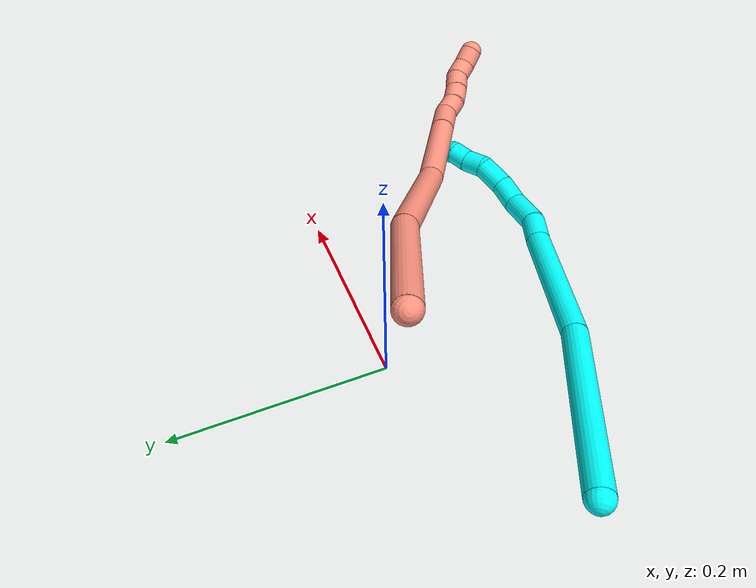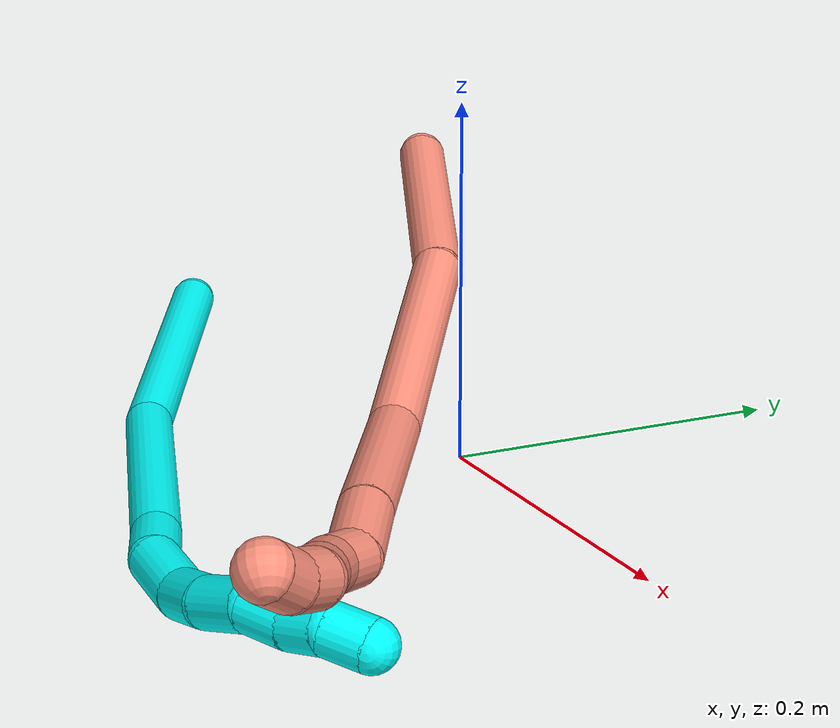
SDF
<sdf version="1.7">
 <world name="default">
  <model name="3">
   <static>0</static>
   <link name="3">
    <collision name="collision-cylinder-e_1_1_4">
     <pose>0.009654 0.024155 -0.082222 -2.85586 0.11218 -0.744285</pose>
     <geometry><cylinder><radius>0.0125</radius><length>0.172478</length></cylinder></geometry>
     <surface>
      <friction><ode><mu>1.16</mu><mu2>1.16</mu2><slip1>0</slip1><slip2>0</slip2></ode></friction>
      <contact><ode><kp>1e+06</kp><kd>1</kd><max_vel>0</max_vel><min_depth>0.001</min_depth></ode></contact>
     </surface>
    </collision>
    <visual name="visual-cylinder-e_1_1_4">
     <pose>0.009654 0.024155 -0.082222 -2.85586 0.11218 -0.744285</pose>
     <geometry><cylinder><radius>0.0125</radius><length>0.172478</length></cylinder></geometry>
     <material><ambient>0.003922 1 0.996078 1</ambient></material>
    </visual>
    <collision name="collision-cylinder-e_2_4_5">
     <pose>0.039225 0.063765 -0.22733 -2.9006 0.298384 -1.78533</pose>
     <geometry><cylinder><radius>0.0125</radius><length>0.135502</length></cylinder></geometry>
     <surface>
      <friction><ode><mu>1.16</mu><mu2>1.16</mu2><slip1>0</slip1><slip2>0</slip2></ode></friction>
      <contact><ode><kp>1e+06</kp><kd>1</kd><max_vel>0</max_vel><min_depth>0.001</min_depth></ode></contact>
     </surface>
    </collision>
    <visual name="visual-cylinder-e_2_4_5">
     <pose>0.039225 0.063765 -0.22733 -2.9006 0.298384 -1.78533</pose>
     <geometry><cylinder><radius>0.0125</radius><length>0.135502</length></cylinder></geometry>
     <material><ambient>0.003922 1 0.996078 1</ambient></material>
    </visual>
    <collision name="collision-cylinder-e_3_5_6">
     <pose>0.062955 0.081426 -0.305003 -2.99358 0.249729 -2.07452</pose>
     <geometry><cylinder><radius>0.0125</radius><length>0.030859</length></cylinder></geometry>
     <surface>
      <friction><ode><mu>1.16</mu><mu2>1.16</mu2><slip1>0</slip1><slip2>0</slip2></ode></friction>
      <contact><ode><kp>1e+06</kp><kd>1</kd><max_vel>0</max_vel><min_depth>0.001</min_depth></ode></contact>
     </surface>
    </collision>
    <visual name="visual-cylinder-e_3_5_6">
     <pose>0.062955 0.081426 -0.305003 -2.99358 0.249729 -2.07452</pose>
     <geometry><cylinder><radius>0.0125</radius><length>0.030859</length></cylinder></geometry>
     <material><ambient>0.003922 1 0.996078 1</ambient></material>
    </visual>
    <collision name="collision-cylinder-e_4_6_7">
     <pose>0.077587 0.087432 -0.334624 -2.89075 0.615058 -2.38578</pose>
     <geometry><cylinder><radius>0.0125</radius><length>0.037498</length></cylinder></geometry>
     <surface>
      <friction><ode><mu>1.16</mu><mu2>1.16</mu2><slip1>0</slip1><slip2>0</slip2></ode></friction>
      <contact><ode><kp>1e+06</kp><kd>1</kd><max_vel>0</max_vel><min_depth>0.001</min_depth></ode></contact>
     </surface>
    </collision>
    <visual name="visual-cylinder-e_4_6_7">
     <pose>0.077587 0.087432 -0.334624 -2.89075 0.615058 -2.38578</pose>
     <geometry><cylinder><radius>0.0125</radius><length>0.037498</length></cylinder></geometry>
     <material><ambient>0.003922 1 0.996078 1</ambient></material>
    </visual>
    <collision name="collision-cylinder-e_5_7_8">
     <pose>0.097145 0.089695 -0.360627 3.00475 0.659418 2.7463</pose>
     <geometry><cylinder><radius>0.0125</radius><length>0.02853</length></cylinder></geometry>
     <surface>
      <friction><ode><mu>1.16</mu><mu2>1.16</mu2><slip1>0</slip1><slip2>0</slip2></ode></friction>
      <contact><ode><kp>1e+06</kp><kd>1</kd><max_vel>0</max_vel><min_depth>0.001</min_depth></ode></contact>
     </surface>
    </collision>
    <visual name="visual-cylinder-e_5_7_8">
     <pose>0.097145 0.089695 -0.360627 3.00475 0.659418 2.7463</pose>
     <geometry><cylinder><radius>0.0125</radius><length>0.02853</length></cylinder></geometry>
     <material><ambient>0.003922 1 0.996078 1</ambient></material>
    </visual>
    <collision name="collision-cylinder-e_6_8_9">
     <pose>0.117776 0.085538 -0.381466 2.87713 0.870704 2.58452</pose>
     <geometry><cylinder><radius>0.0125</radius><length>0.0311</length></cylinder></geometry>
     <surface>
      <friction><ode><mu>1.16</mu><mu2>1.16</mu2><slip1>0</slip1><slip2>0</slip2></ode></friction>
      <contact><ode><kp>1e+06</kp><kd>1</kd><max_vel>0</max_vel><min_depth>0.001</min_depth></ode></contact>
     </surface>
    </collision>
    <visual name="visual-cylinder-e_6_8_9">
     <pose>0.117776 0.085538 -0.381466 2.87713 0.870704 2.58452</pose>
     <geometry><cylinder><radius>0.0125</radius><length>0.0311</length></cylinder></geometry>
     <material><ambient>0.003922 1 0.996078 1</ambient></material>
    </visual>
    <collision name="collision-cylinder-e_7_9_10">
     <pose>0.139879 0.08471 -0.396084 -2.79434 1.09496 -2.58134</pose>
     <geometry><cylinder><radius>0.0125</radius><length>0.022973</length></cylinder></geometry>
     <surface>
      <friction><ode><mu>1.16</mu><mu2>1.16</mu2><slip1>0</slip1><slip2>0</slip2></ode></friction>
      <contact><ode><kp>1e+06</kp><kd>1</kd><max_vel>0</max_vel><min_depth>0.001</min_depth></ode></contact>
     </surface>
    </collision>
    <visual name="visual-cylinder-e_7_9_10">
     <pose>0.139879 0.08471 -0.396084 -2.79434 1.09496 -2.58134</pose>
     <geometry><cylinder><radius>0.0125</radius><length>0.022973</length></cylinder></geometry>
     <material><ambient>0.003922 1 0.996078 1</ambient></material>
    </visual>
    <collision name="collision-cylinder-e_8_10_11">
     <pose>0.158765 0.085707 -0.406045 2.98466 1.04142 2.86909</pose>
     <geometry><cylinder><radius>0.0125</radius><length>0.020102</length></cylinder></geometry>
     <surface>
      <friction><ode><mu>1.16</mu><mu2>1.16</mu2><slip1>0</slip1><slip2>0</slip2></ode></friction>
      <contact><ode><kp>1e+06</kp><kd>1</kd><max_vel>0</max_vel><min_depth>0.001</min_depth></ode></contact>
     </surface>
    </collision>
    <visual name="visual-cylinder-e_8_10_11">
     <pose>0.158765 0.085707 -0.406045 2.98466 1.04142 2.86909</pose>
     <geometry><cylinder><radius>0.0125</radius><length>0.020102</length></cylinder></geometry>
     <material><ambient>0.003922 1 0.996078 1</ambient></material>
    </visual>
    <collision name="collision-cylinder-e_9_11_2">
     <pose>0.177366 0.087329 -0.413395 -2.33972 1.24437 -2.074</pose>
     <geometry><cylinder><radius>0.0125</radius><length>0.020959</length></cylinder></geometry>
     <surface>
      <friction><ode><mu>1.16</mu><mu2>1.16</mu2><slip1>0</slip1><slip2>0</slip2></ode></friction>
      <contact><ode><kp>1e+06</kp><kd>1</kd><max_vel>0</max_vel><min_depth>0.001</min_depth></ode></contact>
     </surface>
    </collision>
    <visual name="visual-cylinder-e_9_11_2">
     <pose>0.177366 0.087329 -0.413395 -2.33972 1.24437 -2.074</pose>
     <geometry><cylinder><radius>0.0125</radius><length>0.020959</length></cylinder></geometry>
     <material><ambient>0.003922 1 0.996078 1</ambient></material>
    </visual>
    <collision name="collision-sphere-2">
     <pose>0.187293 0.089744 -0.415731 0 -0 0</pose>
     <geometry><sphere><radius>0.0125</radius></sphere></geometry>
     <surface>
      <friction><ode><mu>1.16</mu><mu2>1.16</mu2><slip1>0</slip1><slip2>0</slip2></ode></friction>
      <contact><ode><kp>1e+06</kp><kd>1</kd><max_vel>0</max_vel><min_depth>0.001</min_depth></ode></contact>
     </surface>
    </collision>
    <visual name="visual-sphere-2">
     <pose>0.187293 0.089744 -0.415731 0 -0 0</pose>
     <geometry><sphere><radius>0.0125</radius></sphere></geometry>
     <material><ambient>0.003922 1 0.996078 1</ambient></material>
    </visual>
    <collision name="collision-sphere-11">
     <pose>0.16744 0.084914 -0.411058 0 -0 0</pose>
     <geometry><sphere><radius>0.0125</radius></sphere></geometry>
     <surface>
      <friction><ode><mu>1.16</mu><mu2>1.16</mu2><slip1>0</slip1><slip2>0</slip2></ode></friction>
      <contact><ode><kp>1e+06</kp><kd>1</kd><max_vel>0</max_vel><min_depth>0.001</min_depth></ode></contact>
     </surface>
    </collision>
    <visual name="visual-sphere-11">
     <pose>0.16744 0.084914 -0.411058 0 -0 0</pose>
     <geometry><sphere><radius>0.0125</radius></sphere></geometry>
     <material><ambient>0.003922 1 0.996078 1</ambient></material>
    </visual>
    <collision name="collision-sphere-10">
     <pose>0.15009 0.0865 -0.401032 0 -0 0</pose>
     <geometry><sphere><radius>0.0125</radius></sphere></geometry>
     <surface>
      <friction><ode><mu>1.16</mu><mu2>1.16</mu2><slip1>0</slip1><slip2>0</slip2></ode></friction>
      <contact><ode><kp>1e+06</kp><kd>1</kd><max_vel>0</max_vel><min_depth>0.001</min_depth></ode></contact>
     </surface>
    </collision>
    <visual name="visual-sphere-10">
     <pose>0.15009 0.0865 -0.401032 0 -0 0</pose>
     <geometry><sphere><radius>0.0125</radius></sphere></geometry>
     <material><ambient>0.003922 1 0.996078 1</ambient></material>
    </visual>
    <collision name="collision-sphere-9">
     <pose>0.129669 0.082919 -0.391136 0 -0 0</pose>
     <geometry><sphere><radius>0.0125</radius></sphere></geometry>
     <surface>
      <friction><ode><mu>1.16</mu><mu2>1.16</mu2><slip1>0</slip1><slip2>0</slip2></ode></friction>
      <contact><ode><kp>1e+06</kp><kd>1</kd><max_vel>0</max_vel><min_depth>0.001</min_depth></ode></contact>
     </surface>
    </collision>
    <visual name="visual-sphere-9">
     <pose>0.129669 0.082919 -0.391136 0 -0 0</pose>
     <geometry><sphere><radius>0.0125</radius></sphere></geometry>
     <material><ambient>0.003922 1 0.996078 1</ambient></material>
    </visual>
    <collision name="collision-sphere-4">
     <pose>0.019308 0.04831 -0.164444 0 -0 0</pose>
     <geometry><sphere><radius>0.0125</radius></sphere></geometry>
     <surface>
      <friction><ode><mu>1.16</mu><mu2>1.16</mu2><slip1>0</slip1><slip2>0</slip2></ode></friction>
      <contact><ode><kp>1e+06</kp><kd>1</kd><max_vel>0</max_vel><min_depth>0.001</min_depth></ode></contact>
     </surface>
    </collision>
    <visual name="visual-sphere-4">
     <pose>0.019308 0.04831 -0.164444 0 -0 0</pose>
     <geometry><sphere><radius>0.0125</radius></sphere></geometry>
     <material><ambient>0.003922 1 0.996078 1</ambient></material>
    </visual>
    <collision name="collision-sphere-1">
     <geometry><sphere><radius>0.0125</radius></sphere></geometry>
     <surface>
      <friction><ode><mu>1.16</mu><mu2>1.16</mu2><slip1>0</slip1><slip2>0</slip2></ode></friction>
      <contact><ode><kp>1e+06</kp><kd>1</kd><max_vel>0</max_vel><min_depth>0.001</min_depth></ode></contact>
     </surface>
    </collision>
    <visual name="visual-sphere-1">
     <geometry><sphere><radius>0.0125</radius></sphere></geometry>
     <material><ambient>0.003922 1 0.996078 1</ambient></material>
    </visual>
    <collision name="collision-sphere-8">
     <pose>0.105884 0.088157 -0.371796 0 -0 0</pose>
     <geometry><sphere><radius>0.0125</radius></sphere></geometry>
     <surface>
      <friction><ode><mu>1.16</mu><mu2>1.16</mu2><slip1>0</slip1><slip2>0</slip2></ode></friction>
      <contact><ode><kp>1e+06</kp><kd>1</kd><max_vel>0</max_vel><min_depth>0.001</min_depth></ode></contact>
     </surface>
    </collision>
    <visual name="visual-sphere-8">
     <pose>0.105884 0.088157 -0.371796 0 -0 0</pose>
     <geometry><sphere><radius>0.0125</radius></sphere></geometry>
     <material><ambient>0.003922 1 0.996078 1</ambient></material>
    </visual>
    <collision name="collision-sphere-5">
     <pose>0.059142 0.079221 -0.290216 0 -0 0</pose>
     <geometry><sphere><radius>0.0125</radius></sphere></geometry>
     <surface>
      <friction><ode><mu>1.16</mu><mu2>1.16</mu2><slip1>0</slip1><slip2>0</slip2></ode></friction>
      <contact><ode><kp>1e+06</kp><kd>1</kd><max_vel>0</max_vel><min_depth>0.001</min_depth></ode></contact>
     </surface>
    </collision>
    <visual name="visual-sphere-5">
     <pose>0.059142 0.079221 -0.290216 0 -0 0</pose>
     <geometry><sphere><radius>0.0125</radius></sphere></geometry>
     <material><ambient>0.003922 1 0.996078 1</ambient></material>
    </visual>
    <collision name="collision-sphere-6">
     <pose>0.066769 0.083631 -0.31979 0 -0 0</pose>
     <geometry><sphere><radius>0.0125</radius></sphere></geometry>
     <surface>
      <friction><ode><mu>1.16</mu><mu2>1.16</mu2><slip1>0</slip1><slip2>0</slip2></ode></friction>
      <contact><ode><kp>1e+06</kp><kd>1</kd><max_vel>0</max_vel><min_depth>0.001</min_depth></ode></contact>
     </surface>
    </collision>
    <visual name="visual-sphere-6">
     <pose>0.066769 0.083631 -0.31979 0 -0 0</pose>
     <geometry><sphere><radius>0.0125</radius></sphere></geometry>
     <material><ambient>0.003922 1 0.996078 1</ambient></material>
    </visual>
    <collision name="collision-sphere-7">
     <pose>0.088405 0.091233 -0.349458 0 -0 0</pose>
     <geometry><sphere><radius>0.0125</radius></sphere></geometry>
     <surface>
      <friction><ode><mu>1.16</mu><mu2>1.16</mu2><slip1>0</slip1><slip2>0</slip2></ode></friction>
      <contact><ode><kp>1e+06</kp><kd>1</kd><max_vel>0</max_vel><min_depth>0.001</min_depth></ode></contact>
     </surface>
    </collision>
    <visual name="visual-sphere-7">
     <pose>0.088405 0.091233 -0.349458 0 -0 0</pose>
     <geometry><sphere><radius>0.0125</radius></sphere></geometry>
     <material><ambient>0.003922 1 0.996078 1</ambient></material>
    </visual>
    <inertial>
     <pose>0.056778 0.058632 -0.230046 0 -0 0</pose>
     <mass>0.5</mass>
     <inertia>
      <ixx>-0.000218</ixx>
      <ixy>0</ixy>
      <ixz>0</ixz>
      <iyy>-0.00071</iyy>
      <iyz>0</iyz>
      <izz>-0.000329</izz>
     </inertia>
    </inertial>
   </link>
   <pose>-0.200418 -0.084377 0.054374 -1.71058 0.004049 0.970213</pose>
  </model>
  <model name="16">
   <static>0</static>
   <link name="16">
    <collision name="collision-cylinder-e_1_1_4">
     <pose>0.022698 -0.015674 -0.058303 2.87897 0.359619 1.88491</pose>
     <geometry><cylinder><radius>0.0125</radius><length>0.128997</length></cylinder></geometry>
     <surface>
      <friction><ode><mu>1.16</mu><mu2>1.16</mu2><slip1>0</slip1><slip2>0</slip2></ode></friction>
      <contact><ode><kp>1e+06</kp><kd>1</kd><max_vel>0</max_vel><min_depth>0.001</min_depth></ode></contact>
     </surface>
    </collision>
    <visual name="visual-cylinder-e_1_1_4">
     <pose>0.022698 -0.015674 -0.058303 2.87897 0.359619 1.88491</pose>
     <geometry><cylinder><radius>0.0125</radius><length>0.128997</length></cylinder></geometry>
     <material><ambient>1 0.576471 0.494118 1</ambient></material>
    </visual>
    <collision name="collision-cylinder-e_2_4_5">
     <pose>0.058436 -0.058886 -0.176656 2.71162 0.194867 0.841743</pose>
     <geometry><cylinder><radius>0.0125</radius><length>0.134676</length></cylinder></geometry>
     <surface>
      <friction><ode><mu>1.16</mu><mu2>1.16</mu2><slip1>0</slip1><slip2>0</slip2></ode></friction>
      <contact><ode><kp>1e+06</kp><kd>1</kd><max_vel>0</max_vel><min_depth>0.001</min_depth></ode></contact>
     </surface>
    </collision>
    <visual name="visual-cylinder-e_2_4_5">
     <pose>0.058436 -0.058886 -0.176656 2.71162 0.194867 0.841743</pose>
     <geometry><cylinder><radius>0.0125</radius><length>0.134676</length></cylinder></geometry>
     <material><ambient>1 0.576471 0.494118 1</ambient></material>
    </visual>
    <collision name="collision-cylinder-e_3_5_6">
     <pose>0.092923 -0.108546 -0.273034 2.59462 0.467051 1.40661</pose>
     <geometry><cylinder><radius>0.0125</radius><length>0.095271</length></cylinder></geometry>
     <surface>
      <friction><ode><mu>1.16</mu><mu2>1.16</mu2><slip1>0</slip1><slip2>0</slip2></ode></friction>
      <contact><ode><kp>1e+06</kp><kd>1</kd><max_vel>0</max_vel><min_depth>0.001</min_depth></ode></contact>
     </surface>
    </collision>
    <visual name="visual-cylinder-e_3_5_6">
     <pose>0.092923 -0.108546 -0.273034 2.59462 0.467051 1.40661</pose>
     <geometry><cylinder><radius>0.0125</radius><length>0.095271</length></cylinder></geometry>
     <material><ambient>1 0.576471 0.494118 1</ambient></material>
    </visual>
    <collision name="collision-cylinder-e_4_6_7">
     <pose>0.122211 -0.139045 -0.325232 2.65597 0.41191 1.40133</pose>
     <geometry><cylinder><radius>0.0125</radius><length>0.039166</length></cylinder></geometry>
     <surface>
      <friction><ode><mu>1.16</mu><mu2>1.16</mu2><slip1>0</slip1><slip2>0</slip2></ode></friction>
      <contact><ode><kp>1e+06</kp><kd>1</kd><max_vel>0</max_vel><min_depth>0.001</min_depth></ode></contact>
     </surface>
    </collision>
    <visual name="visual-cylinder-e_4_6_7">
     <pose>0.122211 -0.139045 -0.325232 2.65597 0.41191 1.40133</pose>
     <geometry><cylinder><radius>0.0125</radius><length>0.039166</length></cylinder></geometry>
     <material><ambient>1 0.576471 0.494118 1</ambient></material>
    </visual>
    <collision name="collision-cylinder-e_5_7_8">
     <pose>0.134772 -0.155734 -0.346311 2.13045 0.448542 0.781747</pose>
     <geometry><cylinder><radius>0.0125</radius><length>0.021773</length></cylinder></geometry>
     <surface>
      <friction><ode><mu>1.16</mu><mu2>1.16</mu2><slip1>0</slip1><slip2>0</slip2></ode></friction>
      <contact><ode><kp>1e+06</kp><kd>1</kd><max_vel>0</max_vel><min_depth>0.001</min_depth></ode></contact>
     </surface>
    </collision>
    <visual name="visual-cylinder-e_5_7_8">
     <pose>0.134772 -0.155734 -0.346311 2.13045 0.448542 0.781747</pose>
     <geometry><cylinder><radius>0.0125</radius><length>0.021773</length></cylinder></geometry>
     <material><ambient>1 0.576471 0.494118 1</ambient></material>
    </visual>
    <collision name="collision-cylinder-e_6_8_9">
     <pose>0.145882 -0.169598 -0.35695 2.34538 0.688353 1.41166</pose>
     <geometry><cylinder><radius>0.0125</radius><length>0.020112</length></cylinder></geometry>
     <surface>
      <friction><ode><mu>1.16</mu><mu2>1.16</mu2><slip1>0</slip1><slip2>0</slip2></ode></friction>
      <contact><ode><kp>1e+06</kp><kd>1</kd><max_vel>0</max_vel><min_depth>0.001</min_depth></ode></contact>
     </surface>
    </collision>
    <visual name="visual-cylinder-e_6_8_9">
     <pose>0.145882 -0.169598 -0.35695 2.34538 0.688353 1.41166</pose>
     <geometry><cylinder><radius>0.0125</radius><length>0.020112</length></cylinder></geometry>
     <material><ambient>1 0.576471 0.494118 1</ambient></material>
    </visual>
    <collision name="collision-cylinder-e_7_9_10">
     <pose>0.159461 -0.179689 -0.367647 2.4299 0.802307 1.7025</pose>
     <geometry><cylinder><radius>0.0125</radius><length>0.020004</length></cylinder></geometry>
     <surface>
      <friction><ode><mu>1.16</mu><mu2>1.16</mu2><slip1>0</slip1><slip2>0</slip2></ode></friction>
      <contact><ode><kp>1e+06</kp><kd>1</kd><max_vel>0</max_vel><min_depth>0.001</min_depth></ode></contact>
     </surface>
    </collision>
    <visual name="visual-cylinder-e_7_9_10">
     <pose>0.159461 -0.179689 -0.367647 2.4299 0.802307 1.7025</pose>
     <geometry><cylinder><radius>0.0125</radius><length>0.020004</length></cylinder></geometry>
     <material><ambient>1 0.576471 0.494118 1</ambient></material>
    </visual>
    <collision name="collision-cylinder-e_8_10_11">
     <pose>0.171639 -0.191962 -0.376827 2.03951 0.522104 0.820134</pose>
     <geometry><cylinder><radius>0.0125</radius><length>0.02</length></cylinder></geometry>
     <surface>
      <friction><ode><mu>1.16</mu><mu2>1.16</mu2><slip1>0</slip1><slip2>0</slip2></ode></friction>
      <contact><ode><kp>1e+06</kp><kd>1</kd><max_vel>0</max_vel><min_depth>0.001</min_depth></ode></contact>
     </surface>
    </collision>
    <visual name="visual-cylinder-e_8_10_11">
     <pose>0.171639 -0.191962 -0.376827 2.03951 0.522104 0.820134</pose>
     <geometry><cylinder><radius>0.0125</radius><length>0.02</length></cylinder></geometry>
     <material><ambient>1 0.576471 0.494118 1</ambient></material>
    </visual>
    <collision name="collision-cylinder-e_9_11_2">
     <pose>0.182728 -0.207448 -0.382369 1.77768 0.656319 0.794144</pose>
     <geometry><cylinder><radius>0.0125</radius><length>0.02</length></cylinder></geometry>
     <surface>
      <friction><ode><mu>1.16</mu><mu2>1.16</mu2><slip1>0</slip1><slip2>0</slip2></ode></friction>
      <contact><ode><kp>1e+06</kp><kd>1</kd><max_vel>0</max_vel><min_depth>0.001</min_depth></ode></contact>
     </surface>
    </collision>
    <visual name="visual-cylinder-e_9_11_2">
     <pose>0.182728 -0.207448 -0.382369 1.77768 0.656319 0.794144</pose>
     <geometry><cylinder><radius>0.0125</radius><length>0.02</length></cylinder></geometry>
     <material><ambient>1 0.576471 0.494118 1</ambient></material>
    </visual>
    <collision name="collision-sphere-2">
     <pose>0.18883 -0.215202 -0.383997 0 -0 0</pose>
     <geometry><sphere><radius>0.0125</radius></sphere></geometry>
     <surface>
      <friction><ode><mu>1.16</mu><mu2>1.16</mu2><slip1>0</slip1><slip2>0</slip2></ode></friction>
      <contact><ode><kp>1e+06</kp><kd>1</kd><max_vel>0</max_vel><min_depth>0.001</min_depth></ode></contact>
     </surface>
    </collision>
    <visual name="visual-sphere-2">
     <pose>0.18883 -0.215202 -0.383997 0 -0 0</pose>
     <geometry><sphere><radius>0.0125</radius></sphere></geometry>
     <material><ambient>1 0.576471 0.494118 1</ambient></material>
    </visual>
    <collision name="collision-sphere-11">
     <pose>0.176626 -0.199695 -0.380742 0 -0 0</pose>
     <geometry><sphere><radius>0.0125</radius></sphere></geometry>
     <surface>
      <friction><ode><mu>1.16</mu><mu2>1.16</mu2><slip1>0</slip1><slip2>0</slip2></ode></friction>
      <contact><ode><kp>1e+06</kp><kd>1</kd><max_vel>0</max_vel><min_depth>0.001</min_depth></ode></contact>
     </surface>
    </collision>
    <visual name="visual-sphere-11">
     <pose>0.176626 -0.199695 -0.380742 0 -0 0</pose>
     <geometry><sphere><radius>0.0125</radius></sphere></geometry>
     <material><ambient>1 0.576471 0.494118 1</ambient></material>
    </visual>
    <collision name="collision-sphere-10">
     <pose>0.166652 -0.184229 -0.372911 0 -0 0</pose>
     <geometry><sphere><radius>0.0125</radius></sphere></geometry>
     <surface>
      <friction><ode><mu>1.16</mu><mu2>1.16</mu2><slip1>0</slip1><slip2>0</slip2></ode></friction>
      <contact><ode><kp>1e+06</kp><kd>1</kd><max_vel>0</max_vel><min_depth>0.001</min_depth></ode></contact>
     </surface>
    </collision>
    <visual name="visual-sphere-10">
     <pose>0.166652 -0.184229 -0.372911 0 -0 0</pose>
     <geometry><sphere><radius>0.0125</radius></sphere></geometry>
     <material><ambient>1 0.576471 0.494118 1</ambient></material>
    </visual>
    <collision name="collision-sphere-9">
     <pose>0.15227 -0.175148 -0.362382 0 -0 0</pose>
     <geometry><sphere><radius>0.0125</radius></sphere></geometry>
     <surface>
      <friction><ode><mu>1.16</mu><mu2>1.16</mu2><slip1>0</slip1><slip2>0</slip2></ode></friction>
      <contact><ode><kp>1e+06</kp><kd>1</kd><max_vel>0</max_vel><min_depth>0.001</min_depth></ode></contact>
     </surface>
    </collision>
    <visual name="visual-sphere-9">
     <pose>0.15227 -0.175148 -0.362382 0 -0 0</pose>
     <geometry><sphere><radius>0.0125</radius></sphere></geometry>
     <material><ambient>1 0.576471 0.494118 1</ambient></material>
    </visual>
    <collision name="collision-sphere-4">
     <pose>0.045396 -0.031347 -0.116605 0 -0 0</pose>
     <geometry><sphere><radius>0.0125</radius></sphere></geometry>
     <surface>
      <friction><ode><mu>1.16</mu><mu2>1.16</mu2><slip1>0</slip1><slip2>0</slip2></ode></friction>
      <contact><ode><kp>1e+06</kp><kd>1</kd><max_vel>0</max_vel><min_depth>0.001</min_depth></ode></contact>
     </surface>
    </collision>
    <visual name="visual-sphere-4">
     <pose>0.045396 -0.031347 -0.116605 0 -0 0</pose>
     <geometry><sphere><radius>0.0125</radius></sphere></geometry>
     <material><ambient>1 0.576471 0.494118 1</ambient></material>
    </visual>
    <collision name="collision-sphere-1">
     <geometry><sphere><radius>0.0125</radius></sphere></geometry>
     <surface>
      <friction><ode><mu>1.16</mu><mu2>1.16</mu2><slip1>0</slip1><slip2>0</slip2></ode></friction>
      <contact><ode><kp>1e+06</kp><kd>1</kd><max_vel>0</max_vel><min_depth>0.001</min_depth></ode></contact>
     </surface>
    </collision>
    <visual name="visual-sphere-1">
     <geometry><sphere><radius>0.0125</radius></sphere></geometry>
     <material><ambient>1 0.576471 0.494118 1</ambient></material>
    </visual>
    <collision name="collision-sphere-8">
     <pose>0.139493 -0.164047 -0.351519 0 -0 0</pose>
     <geometry><sphere><radius>0.0125</radius></sphere></geometry>
     <surface>
      <friction><ode><mu>1.16</mu><mu2>1.16</mu2><slip1>0</slip1><slip2>0</slip2></ode></friction>
      <contact><ode><kp>1e+06</kp><kd>1</kd><max_vel>0</max_vel><min_depth>0.001</min_depth></ode></contact>
     </surface>
    </collision>
    <visual name="visual-sphere-8">
     <pose>0.139493 -0.164047 -0.351519 0 -0 0</pose>
     <geometry><sphere><radius>0.0125</radius></sphere></geometry>
     <material><ambient>1 0.576471 0.494118 1</ambient></material>
    </visual>
    <collision name="collision-sphere-5">
     <pose>0.071475 -0.086424 -0.236706 0 -0 0</pose>
     <geometry><sphere><radius>0.0125</radius></sphere></geometry>
     <surface>
      <friction><ode><mu>1.16</mu><mu2>1.16</mu2><slip1>0</slip1><slip2>0</slip2></ode></friction>
      <contact><ode><kp>1e+06</kp><kd>1</kd><max_vel>0</max_vel><min_depth>0.001</min_depth></ode></contact>
     </surface>
    </collision>
    <visual name="visual-sphere-5">
     <pose>0.071475 -0.086424 -0.236706 0 -0 0</pose>
     <geometry><sphere><radius>0.0125</radius></sphere></geometry>
     <material><ambient>1 0.576471 0.494118 1</ambient></material>
    </visual>
    <collision name="collision-sphere-6">
     <pose>0.114371 -0.130668 -0.309362 0 -0 0</pose>
     <geometry><sphere><radius>0.0125</radius></sphere></geometry>
     <surface>
      <friction><ode><mu>1.16</mu><mu2>1.16</mu2><slip1>0</slip1><slip2>0</slip2></ode></friction>
      <contact><ode><kp>1e+06</kp><kd>1</kd><max_vel>0</max_vel><min_depth>0.001</min_depth></ode></contact>
     </surface>
    </collision>
    <visual name="visual-sphere-6">
     <pose>0.114371 -0.130668 -0.309362 0 -0 0</pose>
     <geometry><sphere><radius>0.0125</radius></sphere></geometry>
     <material><ambient>1 0.576471 0.494118 1</ambient></material>
    </visual>
    <collision name="collision-sphere-7">
     <pose>0.130051 -0.147421 -0.341103 0 -0 0</pose>
     <geometry><sphere><radius>0.0125</radius></sphere></geometry>
     <surface>
      <friction><ode><mu>1.16</mu><mu2>1.16</mu2><slip1>0</slip1><slip2>0</slip2></ode></friction>
      <contact><ode><kp>1e+06</kp><kd>1</kd><max_vel>0</max_vel><min_depth>0.001</min_depth></ode></contact>
     </surface>
    </collision>
    <visual name="visual-sphere-7">
     <pose>0.130051 -0.147421 -0.341103 0 -0 0</pose>
     <geometry><sphere><radius>0.0125</radius></sphere></geometry>
     <material><ambient>1 0.576471 0.494118 1</ambient></material>
    </visual>
    <inertial>
     <pose>0.081166 -0.088248 -0.21464 0 -0 0</pose>
     <mass>0.5</mass>
     <inertia><ixx>0.000507</ixx><ixy>0</ixy><ixz>0</ixz><iyy>0.000343</iyy><iyz>0</iyz><izz>-3e-06</izz></inertia>
    </inertial>
   </link>
   <pose>-0.068541 0.009384 0.159171 -0.36412 -0.799512 0.223024</pose>
  </model>
 </world>
</sdf>
